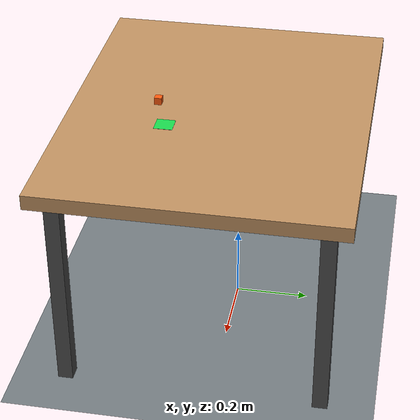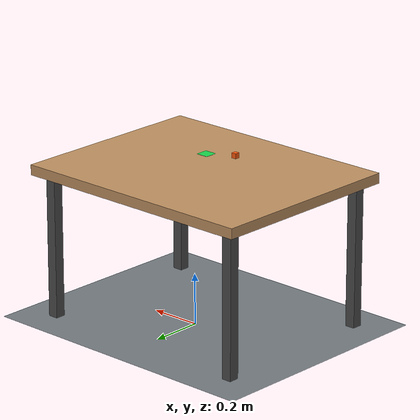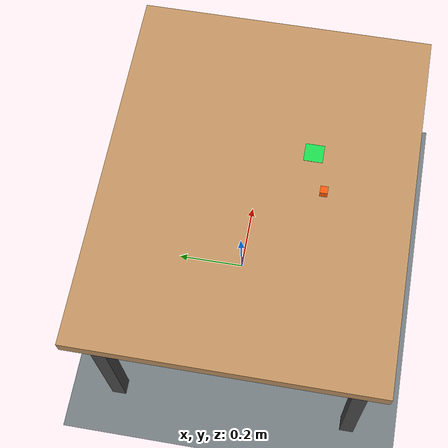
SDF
<?xml version="1.0"?>
<sdf version="1.6">
  <world name="so_arm_pick_place">
    <gravity>0 0 -9.81</gravity>
    <physics name="tabletop_physics" type="ode">
      <max_step_size>0.001</max_step_size>
      <real_time_factor>1.0</real_time_factor>
      <real_time_update_rate>1000</real_time_update_rate>
      <ode>
        <solver><type>quick</type><iters>100</iters><sor>1.3</sor></solver>
        <constraints><cfm>0</cfm><erp>0.2</erp><contact_max_correcting_vel>0.1</contact_max_correcting_vel><contact_surface_layer>0.001</contact_surface_layer></constraints>
      </ode>
    </physics>
    <scene>
      <ambient>0.6 0.6 0.6 1</ambient>
      <background>0.82 0.87 0.93 1</background>
      <shadows>true</shadows>
    </scene>
    <gui fullscreen="0">
      <camera name="tabletop_camera">
        <pose>0.65 -0.80 1.05 0 0.45 2.30</pose>
        <view_controller>orbit</view_controller>
      </camera>
    </gui>

    <!-- Everything is defined locally; no downloads from model:// repositories. -->
    <light name="sun" type="directional">
      <cast_shadows>true</cast_shadows>
      <pose>0 0 10 0 0 0</pose>
      <diffuse>0.9 0.9 0.9 1</diffuse>
      <specular>0.2 0.2 0.2 1</specular>
      <attenuation><range>1000</range><constant>0.9</constant><linear>0.01</linear><quadratic>0.001</quadratic></attenuation>
      <direction>-0.5 0.3 -1</direction>
    </light>
    <model name="ground_plane">
      <static>true</static>
      <link name="ground">
        <collision name="ground_collision">
          <geometry><plane><normal>0 0 1</normal><size>10 10</size></plane></geometry>
          <surface><friction><ode><mu>1</mu><mu2>1</mu2></ode></friction></surface>
        </collision>
        <visual name="ground_visual">
          <geometry><plane><normal>0 0 1</normal><size>10 10</size></plane></geometry>
          <material><ambient>0.45 0.48 0.5 1</ambient><diffuse>0.45 0.48 0.5 1</diffuse></material>
        </visual>
      </link>
    </model>
    <model name="work_table">
      <static>true</static>
      <link name="table">
        <!-- Upper face is exactly world z=0.60 m. -->
        <collision name="tabletop_collision">
          <pose>0 -0.05 0.58 0 0 0</pose>
          <geometry><box><size>1.0 0.8 0.04</size></box></geometry>
          <surface><friction><ode><mu>1.0</mu><mu2>1.0</mu2></ode></friction></surface>
        </collision>
        <visual name="tabletop_visual">
          <pose>0 -0.05 0.58 0 0 0</pose>
          <geometry><box><size>1.0 0.8 0.04</size></box></geometry>
          <material><ambient>0.62 0.45 0.29 1</ambient><diffuse>0.75 0.57 0.38 1</diffuse></material>
        </visual>
        <visual name="leg_front_left">
          <pose>0.44 -0.39 0.28 0 0 0</pose>
          <geometry><box><size>0.04 0.04 0.56</size></box></geometry>
          <material><ambient>0.25 0.25 0.25 1</ambient><diffuse>0.3 0.3 0.3 1</diffuse></material>
        </visual>
        <visual name="leg_front_right">
          <pose>-0.44 -0.39 0.28 0 0 0</pose>
          <geometry><box><size>0.04 0.04 0.56</size></box></geometry>
          <material><ambient>0.25 0.25 0.25 1</ambient><diffuse>0.3 0.3 0.3 1</diffuse></material>
        </visual>
        <visual name="leg_back_left">
          <pose>0.44 0.29 0.28 0 0 0</pose>
          <geometry><box><size>0.04 0.04 0.56</size></box></geometry>
          <material><ambient>0.25 0.25 0.25 1</ambient><diffuse>0.3 0.3 0.3 1</diffuse></material>
        </visual>
        <visual name="leg_back_right">
          <pose>-0.44 0.29 0.28 0 0 0</pose>
          <geometry><box><size>0.04 0.04 0.56</size></box></geometry>
          <material><ambient>0.25 0.25 0.25 1</ambient><diffuse>0.3 0.3 0.3 1</diffuse></material>
        </visual>
      </link>
    </model>
    <model name="drop_marker">
      <static>true</static>
      <pose>0.11 -0.18 0.6005 0 0 0</pose>
      <link name="marker">
        <!-- Visual only: it cannot catch or collide with the cube. -->
        <visual name="target_visual">
          <geometry><box><size>0.05 0.05 0.0005</size></box></geometry>
          <material><ambient>0.1 0.65 0.22 1</ambient><diffuse>0.1 0.85 0.3 1</diffuse></material>
        </visual>
      </link>
    </model>
    <model name="pick_cube">
      <pose>0 -0.22 0.61 0 0 0</pose>
      <link name="link">
        <inertial>
          <mass>0.02</mass>
          <inertia><ixx>0.000001333333</ixx><ixy>0</ixy><ixz>0</ixz><iyy>0.000001333333</iyy><iyz>0</iyz><izz>0.000001333333</izz></inertia>
        </inertial>
        <collision name="cube_collision">
          <geometry><box><size>0.02 0.02 0.02</size></box></geometry>
          <surface>
            <friction><ode><mu>1.2</mu><mu2>1.2</mu2></ode></friction>
            <contact><ode><kp>100000</kp><kd>1</kd><max_vel>0.05</max_vel><min_depth>0.0001</min_depth></ode></contact>
          </surface>
        </collision>
        <visual name="cube_visual">
          <geometry><box><size>0.02 0.02 0.02</size></box></geometry>
          <material><ambient>1.0 0.25 0.03 1</ambient><diffuse>1.0 0.35 0.05 1</diffuse></material>
        </visual>
      </link>
    </model>
    <plugin name="gazebo_ros_state" filename="libgazebo_ros_state.so">
      <ros><namespace>/gazebo</namespace></ros>
      <update_rate>30</update_rate>
    </plugin>
  </world>
</sdf>
